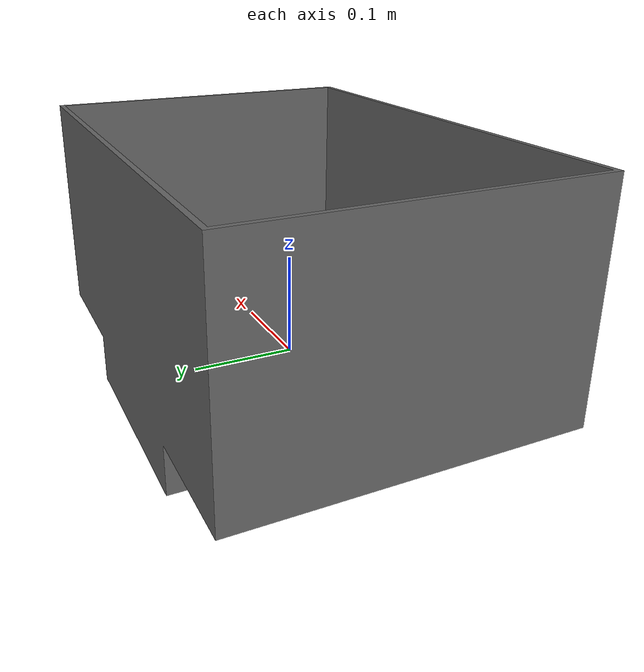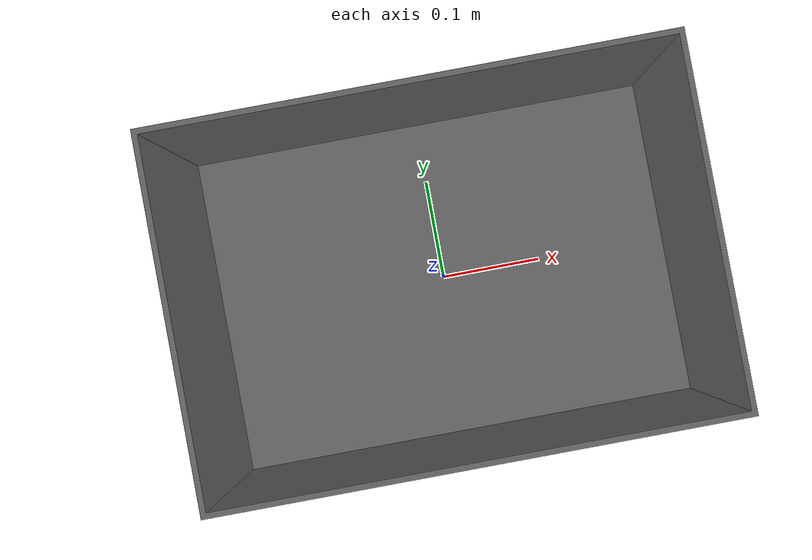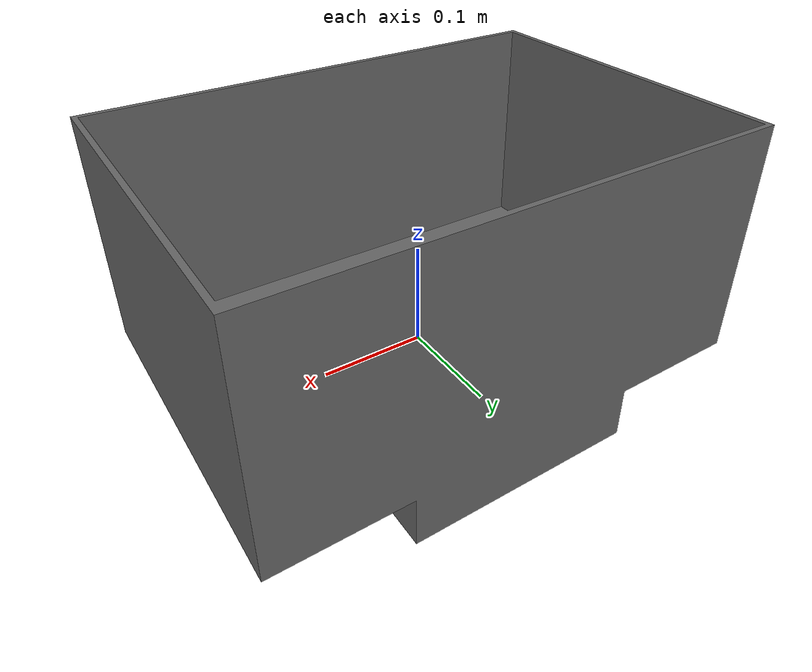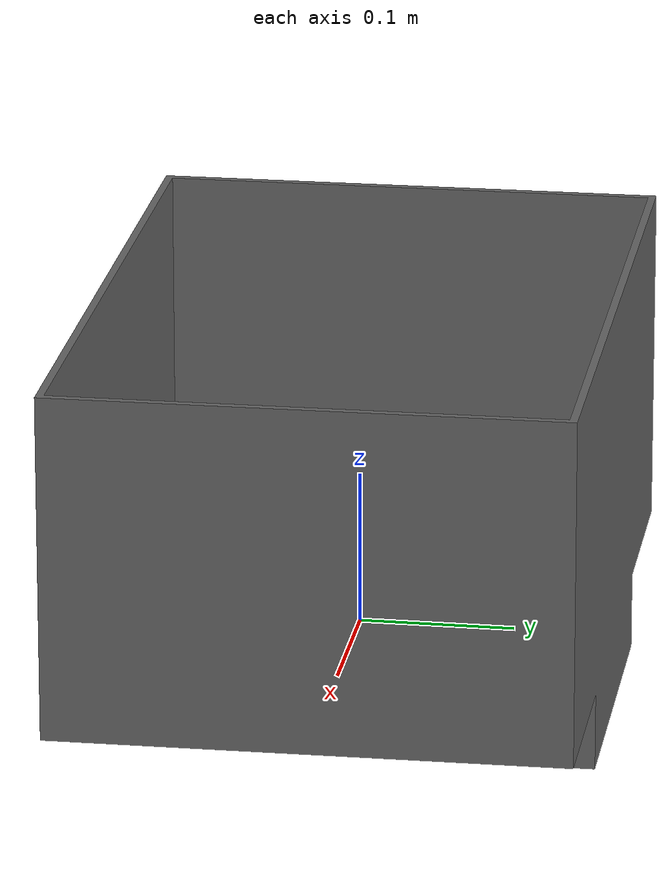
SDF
<?xml version="1.0" ?>
<sdf version="1.8">
  <model name="canasto">
    <pose>0 0 0 0 0 0</pose>

    <link name="canasto">
      <visual name="visual">
        <geometry>
            <mesh>
              <uri>meshes/canasto.stl</uri>
              <scale>1e-3 1e-3 1e-3</scale>
            </mesh>
        </geometry>
        <!-- Opcional: aplicar material -->
        <material>
          <diffuse>0.4 0.4 0.4 1.0</diffuse>
        </material>
      </visual>

      <collision name="collision">
        <geometry>
            <mesh>
              <uri>meshes/canasto.stl</uri>
              <scale>1e-3 1e-3 1e-3</scale>
            </mesh>
        </geometry>
      </collision>

      <inertial>
        <mass>30.0</mass>
        <inertia>
          <ixx>0.1</ixx>
          <ixy>0.0</ixy>
          <ixz>0.0</ixz>
          <iyy>0.1</iyy>
          <iyz>0.0</iyz>
          <izz>0.1</izz>
        </inertia>
      </inertial>
    </link>

    <!-- Más links (brazos, ruedas, etc.) -->
    <link name="roller1">
      <pose>0 0.16 -0.035 0 -1.5708 0</pose>

      <collision name="collision">
        <geometry>
            <cylinder>
              <radius>0.02</radius>
              <length>0.200</length>
            </cylinder>
        </geometry>
      </collision>

      <inertial>
        <mass>1.0</mass>
        <inertia>
          <ixx>0.1</ixx>
          <ixy>0.0</ixy>
          <ixz>0.0</ixz>
          <iyy>0.1</iyy>
          <iyz>0.0</iyz>
          <izz>0.1</izz>
        </inertia>
      </inertial>
    </link>

    <joint name="j_roller1" type="continuous">
      <pose>0.0 0.0 0.0 0.0 0.0 0.0</pose>
      <parent>canasto</parent>
      <child>roller1</child>
      <axis>
        <xyz>1.0 0.0 0.0</xyz>
      </axis>
    </joint>

    <link name="roller2">
      <pose>0 -0.16 -0.035 0 -1.5708 0</pose>

      <collision name="collision">
        <geometry>
            <cylinder>
              <radius>0.02</radius>
              <length>0.200</length>
            </cylinder>
        </geometry>
      </collision>

      <inertial>
        <mass>1.0</mass>
        <inertia>
          <ixx>0.1</ixx>
          <ixy>0.0</ixy>
          <ixz>0.0</ixz>
          <iyy>0.1</iyy>
          <iyz>0.0</iyz>
          <izz>0.1</izz>
        </inertia>
      </inertial>
    </link>

    <joint name="j_roller2" type="continuous">
      <pose>0.0 0.0 0 0.0 0.0 0.0</pose>
      <parent>canasto</parent>
      <child>roller2</child>
      <axis>
        <xyz>1.0 0.0 0.0</xyz>
      </axis>
    </joint>

  </model>
</sdf>
